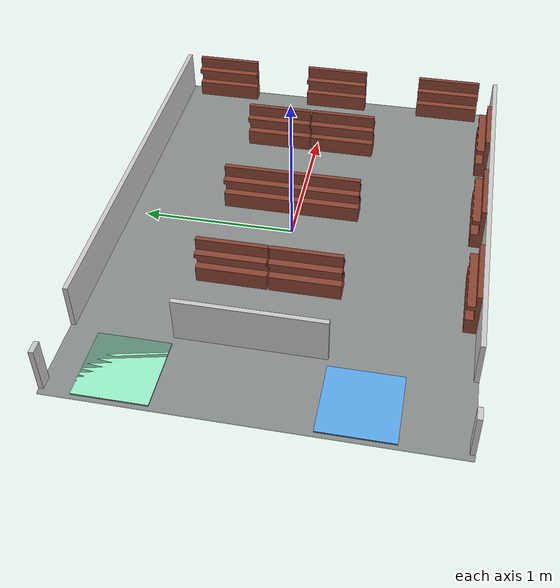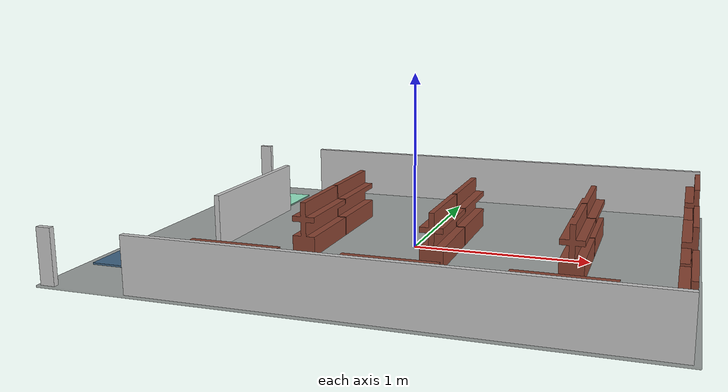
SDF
<sdf version="1.8">
 <world name="pinky_SOLO">
  <physics name="1ms" type="ignored">
   <max_step_size>0.001</max_step_size>
   <real_time_factor>1.0</real_time_factor>
  </physics>
  <plugin filename="gz-sim-physics-system" name="gz::sim::systems::Physics"/>
  <plugin filename="gz-sim-sensors-system" name="gz::sim::systems::Sensors">
   <render_engine>ogre2</render_engine>
  </plugin>
  <plugin filename="gz-sim-user-commands-system" name="gz::sim::systems::UserCommands"/>
  <plugin filename="gz-sim-scene-broadcaster-system" name="gz::sim::systems::SceneBroadcaster"/>
  <plugin filename="gz-sim-imu-system" name="gz::sim::systems::Imu"/>
  <light type="directional" name="sun">
   <cast_shadows>false</cast_shadows>
   <pose>0 0 2 0 0 0</pose>
   <diffuse>1 1 1 1</diffuse>
   <specular>1 1 1 1</specular>
   <attenuation><range>1000</range><constant>1</constant><linear>0</linear><quadratic>0</quadratic></attenuation>
   <direction>0 0 -1</direction>
  </light>
  <model name="floor">
   <static>true</static>
   <link name="link">
    <collision name="collision">
     <geometry><box><size>3.15 2.39 0.01</size></box></geometry>
     <pose>0 -0.07 0.01 0 0 0</pose>
    </collision>
    <visual name="visual">
     <geometry><box><size>3.15 2.39 0.01</size></box></geometry>
     <material>
      <ambient>0.2 0.2 0.2 0.5</ambient>
      <diffuse>0.2 0.2 0.2 0.5</diffuse>
      <specular>0.1 0.1 0.1 1</specular>
     </material>
     <pose>0 -0.07 0.01 0 0 0</pose>
    </visual>
    <inertial>
     <mass>1</mass>
     <inertia><ixx>1</ixx><ixy>0</ixy><ixz>0</ixz><iyy>1</iyy><iyz>0</iyz><izz>1</izz></inertia>
    </inertial>
   </link>
  </model>
  <model name="package_area">
   <static>true</static>
   <link name="link">
    <collision name="collision">
     <geometry><box><size>0.45 0.45 0.01</size></box></geometry>
     <pose>0 0 0.01 0 0 0</pose>
    </collision>
    <visual name="visual">
     <geometry><box><size>0.45 0.45 0.01</size></box></geometry>
     <material>
      <ambient>0.36 0.67 0.93 1</ambient>
      <diffuse>0.36 0.67 0.93 1</diffuse>
      <specular>0.1 0.1 0.1 1</specular>
      <emissive>0 0 0 0</emissive>
     </material>
     <pose>0 0 0.01 0 0 0</pose>
    </visual>
    <pose>-1.32 -0.64 0 0 0 0</pose>
    <inertial>
     <mass>1</mass>
     <inertia><ixx>1</ixx><ixy>0</ixy><ixz>0</ixz><iyy>1</iyy><iyz>0</iyz><izz>1</izz></inertia>
    </inertial>
   </link>
  </model>
  <model name="charge_area">
   <static>true</static>
   <link name="link">
    <collision name="collision">
     <geometry><box><size>0.45 0.45 0.01</size></box></geometry>
     <pose>0 0 0.01 0 0 0</pose>
    </collision>
    <visual name="visual">
     <geometry><box><size>0.45 0.45 0.01</size></box></geometry>
     <material>
      <ambient>0.6 0.95 0.8 1</ambient>
      <diffuse>0.6 0.95 0.8 1</diffuse>
      <specular>0.1 0.1 0.1 1</specular>
      <emissive>0 0 0 0</emissive>
     </material>
     <pose>0 0 0.01 0 0 0</pose>
    </visual>
    <pose>-1.32 0.72 0 0 0 0</pose>
    <inertial>
     <mass>1</mass>
     <inertia><ixx>1</ixx><ixy>0</ixy><ixz>0</ixz><iyy>1</iyy><iyz>0</iyz><izz>1</izz></inertia>
    </inertial>
   </link>
  </model>
  <include><uri>../models/SOLO/wall_80_1.sdf</uri><pose>-1.465 1.095 0 0 0 0</pose></include>
  <include><uri>../models/SOLO/wall_80_2.sdf</uri><pose>-1.465 -1.265 0 0 0 0</pose></include>
  <include><uri>../models/SOLO/wall_910.sdf</uri><pose>-1.055 -0.415 0 0 0 0</pose></include>
  <include><uri>../models/SOLO/wall_2610_1.sdf</uri><pose>1.545 1.095 0 0 0 0</pose></include>
  <include><uri>../models/SOLO/wall_2610_2.sdf</uri><pose>1.545 -1.265 0 0 0 0</pose></include>
  <include><uri>../models/SOLO/shelf_half_W_1.sdf</uri><pose>1.465 0.565 0 0 0 0</pose></include>
  <include><uri>../models/SOLO/shelf_half_W_2.sdf</uri><pose>1.465 -0.285 0 0 0 0</pose></include>
  <include><uri>../models/SOLO/shelf_half_W_3.sdf</uri><pose>1.465 -1.135 0 0 0 0</pose></include>
  <include><uri>../models/SOLO/shelf_half_L_1.sdf</uri><pose>0.795 -1.155 0 0 0 0</pose></include>
  <include><uri>../models/SOLO/shelf_half_L_2.sdf</uri><pose>0.045 -1.155 0 0 0 0</pose></include>
  <include><uri>../models/SOLO/shelf_half_L_3.sdf</uri><pose>-0.705 -1.155 0 0 0 0</pose></include>
  <include><uri>../models/SOLO/shelf_1.sdf</uri><pose>0.885 0.045 0 0 0 0</pose></include>
  <include><uri>../models/SOLO/shelf_2.sdf</uri><pose>0.885 -0.415 0 0 0 0</pose></include>
  <include><uri>../models/SOLO/shelf_3.sdf</uri><pose>0.155 0.045 0 0 0 0</pose></include>
  <include><uri>../models/SOLO/shelf_4.sdf</uri><pose>0.155 -0.415 0 0 0 0</pose></include>
  <include><uri>../models/SOLO/shelf_5.sdf</uri><pose>-0.575 0.045 0 0 0 0</pose></include>
  <include><uri>../models/SOLO/shelf_6.sdf</uri><pose>-0.575 -0.415 0 0 0 0</pose></include>
 </world>
</sdf>

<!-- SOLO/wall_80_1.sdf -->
<sdf version="1.10">
  <model name="wall_80_1">
    <static>true</static>
    <link name="link">
      <visual name="visual">
        <geometry>
          <mesh>
            <uri>./wall_80.dae</uri>
          </mesh>
        </geometry>
        <material>
          <ambient>0.8 0.8 0.8 1</ambient>
          <diffuse>0.8 0.8 0.8 1</diffuse>
          <specular>0.1 0.1 0.1 1</specular>
        </material>
      </visual>
      <collision name="collision">
        <geometry>
          <mesh>
            <uri>./wall_80.dae</uri>
          </mesh>
        </geometry>
      </collision>
    </link>
    <pose>0 0 0 0 0 0</pose>
  </model>
</sdf>

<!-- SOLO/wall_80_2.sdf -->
<sdf version="1.10">
  <model name="wall_80_2">
    <static>true</static>
    <link name="link">
      <visual name="visual">
        <geometry>
          <mesh>
            <uri>./wall_80.dae</uri>
          </mesh>
        </geometry>
        <material>
          <ambient>0.8 0.8 0.8 1</ambient>
          <diffuse>0.8 0.8 0.8 1</diffuse>
          <specular>0.1 0.1 0.1 1</specular>
        </material>
      </visual>
      <collision name="collision">
        <geometry>
          <mesh>
            <uri>./wall_80.dae</uri>
          </mesh>
        </geometry>
      </collision>
    </link>
    <pose>0 0 0 0 0 0</pose>
  </model>
</sdf>

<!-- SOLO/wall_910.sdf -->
<sdf version="1.10">
  <model name="wall_910">
    <static>true</static>
    <link name="link">
      <visual name="visual">
        <geometry>
          <mesh>
            <uri>./wall_910.dae</uri>
          </mesh>
        </geometry>
        <material>
          <ambient>0.8 0.8 0.8 1</ambient>
          <diffuse>0.8 0.8 0.8 1</diffuse>
          <specular>0.1 0.1 0.1 1</specular>
        </material>
      </visual>
      <collision name="collision">
        <geometry>
          <mesh>
            <uri>./wall_910.dae</uri>
          </mesh>
        </geometry>
      </collision>
    </link>
    <pose>0 0 0 0 0 0</pose>
  </model>
</sdf>

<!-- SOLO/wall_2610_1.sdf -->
<sdf version="1.10">
  <model name="wall_2610_1">
    <static>true</static>
    <link name="link">
      <visual name="visual">
        <geometry>
          <mesh>
            <uri>./wall_2610.dae</uri>
          </mesh>
        </geometry>
        <material>
          <ambient>0.8 0.8 0.8 1</ambient>
          <diffuse>0.8 0.8 0.8 1</diffuse>
          <specular>0.1 0.1 0.1 1</specular>
        </material>
      </visual>
      <collision name="collision">
        <geometry>
          <mesh>
            <uri>./wall_2610.dae</uri>
          </mesh>
        </geometry>
      </collision>
    </link>
    <pose>0 0 0 0 0 0</pose>
  </model>
</sdf>

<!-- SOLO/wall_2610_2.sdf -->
<sdf version="1.10">
  <model name="wall_2610_2">
    <static>true</static>
    <link name="link">
      <visual name="visual">
        <geometry>
          <mesh>
            <uri>./wall_2610.dae</uri>
          </mesh>
        </geometry>
        <material>
          <ambient>0.8 0.8 0.8 1</ambient>
          <diffuse>0.8 0.8 0.8 1</diffuse>
          <specular>0.1 0.1 0.1 1</specular>
        </material>
      </visual>
      <collision name="collision">
        <geometry>
          <mesh>
            <uri>./wall_2610.dae</uri>
          </mesh>
        </geometry>
      </collision>
    </link>
    <pose>0 0 0 0 0 0</pose>
  </model>
</sdf>

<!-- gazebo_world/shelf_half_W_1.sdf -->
<sdf version="1.10">
  <model name="shelf_half_W_1">
    <static>true</static>
    <link name="link">
      <visual name="visual">
        <geometry>
          <mesh>
            <uri>./models/shelf_half_W.dae</uri>
          </mesh>
        </geometry>
        <material>
          <ambient>0.55 0.27 0.20 1</ambient>
          <diffuse>0.55 0.27 0.20 1</diffuse>
          <specular>0.1 0.1 0.1 1</specular>
          <emissive>0 0 0 1</emissive>
        </material>
      </visual>
      <collision name="collision">
        <geometry>
          <mesh>
            <uri>./models/shelf_half_W.dae</uri>
          </mesh>
        </geometry>
      </collision>
    </link>
    <pose>0 0 0 0 0 0</pose>
  </model>
</sdf>

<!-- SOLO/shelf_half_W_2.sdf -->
<sdf version="1.10">
  <model name="shelf_half_W_2">
    <static>true</static>
    <link name="link">
      <visual name="visual">
        <geometry>
          <mesh>
            <uri>./shelf_half_W.dae</uri>
          </mesh>
        </geometry>
        <material>
          <ambient>0.55 0.27 0.20 1</ambient>
          <diffuse>0.55 0.27 0.20 1</diffuse>
          <specular>0.1 0.1 0.1 1</specular>
          <emissive>0 0 0 1</emissive>
        </material>
      </visual>
      <collision name="collision">
        <geometry>
          <mesh>
            <uri>./shelf_half_W.dae</uri>
          </mesh>
        </geometry>
      </collision>
    </link>
    <pose>0 0 0 0 0 0</pose>
  </model>
</sdf>

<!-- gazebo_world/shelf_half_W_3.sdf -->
<sdf version="1.10">
  <model name="shelf_half_W_3">
    <static>true</static>
    <link name="link">
      <visual name="visual">
        <geometry>
          <mesh>
            <uri>./models/shelf_half_W.dae</uri>
          </mesh>
        </geometry>
        <material>
          <ambient>0.55 0.27 0.20 1</ambient>
          <diffuse>0.55 0.27 0.20 1</diffuse>
          <specular>0.1 0.1 0.1 1</specular>
          <emissive>0 0 0 1</emissive>
        </material>
      </visual>
      <collision name="collision">
        <geometry>
          <mesh>
            <uri>./models/shelf_half_W.dae</uri>
          </mesh>
        </geometry>
      </collision>
    </link>
    <pose>0 0 0 0 0 0</pose>
  </model>
</sdf>

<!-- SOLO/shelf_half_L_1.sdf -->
<sdf version="1.10">
  <model name="shelf_half_L_1">
    <static>true</static>
    <link name="link">
      <visual name="visual">
        <geometry>
          <mesh>
            <uri>./shelf_half_L.dae</uri>
          </mesh>
        </geometry>
        <material>
          <ambient>0.55 0.27 0.20 1</ambient>
          <diffuse>0.55 0.27 0.20 1</diffuse>
          <specular>0.1 0.1 0.1 1</specular>
          <emissive>0 0 0 1</emissive>
        </material>
      </visual>
      <collision name="collision">
        <geometry>
          <mesh>
            <uri>./shelf_half_L.dae</uri>
          </mesh>
        </geometry>
      </collision>
    </link>
    <pose>0 0 0 0 0 0</pose>
  </model>
</sdf>

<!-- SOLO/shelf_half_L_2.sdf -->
<sdf version="1.10">
  <model name="shelf_half_L_2">
    <static>true</static>
    <link name="link">
      <visual name="visual">
        <geometry>
          <mesh>
            <uri>./shelf_half_L.dae</uri>
          </mesh>
        </geometry>
        <material>
          <ambient>0.55 0.27 0.20 1</ambient>
          <diffuse>0.55 0.27 0.20 1</diffuse>
          <specular>0.1 0.1 0.1 1</specular>
          <emissive>0 0 0 1</emissive>
        </material>
      </visual>
      <collision name="collision">
        <geometry>
          <mesh>
            <uri>./shelf_half_L.dae</uri>
          </mesh>
        </geometry>
      </collision>
    </link>
    <pose>0 0 0 0 0 0</pose>
  </model>
</sdf>

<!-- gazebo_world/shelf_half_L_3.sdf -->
<sdf version="1.10">
  <model name="shelf_half_L_3">
    <static>true</static>
    <link name="link">
      <visual name="visual">
        <geometry>
          <mesh>
            <uri>./models/shelf_half_L.dae</uri>
          </mesh>
        </geometry>
        <material>
          <ambient>0.55 0.27 0.20 1</ambient>
          <diffuse>0.55 0.27 0.20 1</diffuse>
          <specular>0.1 0.1 0.1 1</specular>
          <emissive>0 0 0 1</emissive>
        </material>
      </visual>
      <collision name="collision">
        <geometry>
          <mesh>
            <uri>./models/shelf_half_L.dae</uri>
          </mesh>
        </geometry>
      </collision>
    </link>
    <pose>0 0 0 0 0 0</pose>
  </model>
</sdf>

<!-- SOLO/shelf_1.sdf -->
<sdf version="1.10">
  <model name="shelf_1">
    <static>true</static>
    <link name="link">
      <visual name="visual">
        <geometry>
          <mesh>
            <uri>./shelf.dae</uri>
          </mesh>
        </geometry>
        <material>
          <ambient>0.55 0.27 0.20 1</ambient>
          <diffuse>0.55 0.27 0.20 1</diffuse>
          <specular>0.1 0.1 0.1 1</specular>
          <emissive>0 0 0 1</emissive>
        </material>
      </visual>
      <collision name="collision">
        <geometry>
          <mesh>
            <uri>./shelf.dae</uri>
          </mesh>
        </geometry>
      </collision>
    </link>
    <pose>0 0 0 0 0 0</pose>
  </model>
</sdf>

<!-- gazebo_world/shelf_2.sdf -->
<sdf version="1.10">
  <model name="shelf_2">
    <static>true</static>
    <link name="link">
      <visual name="visual">
        <geometry>
          <mesh>
            <uri>./models/shelf.dae</uri>
          </mesh>
        </geometry>
        <material>
          <ambient>0.55 0.27 0.20 1</ambient>
          <diffuse>0.55 0.27 0.20 1</diffuse>
          <specular>0.1 0.1 0.1 1</specular>
          <emissive>0 0 0 1</emissive>
        </material>
      </visual>
      <collision name="collision">
        <geometry>
          <mesh>
            <uri>./models/shelf.dae</uri>
          </mesh>
        </geometry>
      </collision>
    </link>
    <pose>0 0 0 0 0 0</pose>
  </model>
</sdf>

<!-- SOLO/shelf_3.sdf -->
<sdf version="1.10">
  <model name="shelf_3">
    <static>true</static>
    <link name="link">
      <visual name="visual">
        <geometry>
          <mesh>
            <uri>./shelf.dae</uri>
          </mesh>
        </geometry>
        <material>
          <ambient>0.55 0.27 0.20 1</ambient>
          <diffuse>0.55 0.27 0.20 1</diffuse>
          <specular>0.1 0.1 0.1 1</specular>
          <emissive>0 0 0 1</emissive>
        </material>
      </visual>
      <collision name="collision">
        <geometry>
          <mesh>
            <uri>./shelf.dae</uri>
          </mesh>
        </geometry>
      </collision>
    </link>
    <pose>0 0 0 0 0 0</pose>
  </model>
</sdf>

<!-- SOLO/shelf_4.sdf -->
<sdf version="1.10">
  <model name="shelf_4">
    <static>true</static>
    <link name="link">
      <visual name="visual">
        <geometry>
          <mesh>
            <uri>./shelf.dae</uri>
          </mesh>
        </geometry>
        <material>
          <ambient>0.55 0.27 0.20 1</ambient>
          <diffuse>0.55 0.27 0.20 1</diffuse>
          <specular>0.1 0.1 0.1 1</specular>
          <emissive>0 0 0 1</emissive>
        </material>
      </visual>
      <collision name="collision">
        <geometry>
          <mesh>
            <uri>./shelf.dae</uri>
          </mesh>
        </geometry>
      </collision>
    </link>
    <pose>0 0 0 0 0 0</pose>
  </model>
</sdf>

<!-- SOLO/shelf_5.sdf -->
<sdf version="1.10">
  <model name="shelf_5">
    <static>true</static>
    <link name="link">
      <visual name="visual">
        <geometry>
          <mesh>
            <uri>./shelf.dae</uri>
          </mesh>
        </geometry>
        <material>
          <ambient>0.55 0.27 0.20 1</ambient>
          <diffuse>0.55 0.27 0.20 1</diffuse>
          <specular>0.1 0.1 0.1 1</specular>
          <emissive>0 0 0 1</emissive>
        </material>
      </visual>
      <collision name="collision">
        <geometry>
          <mesh>
            <uri>./shelf.dae</uri>
          </mesh>
        </geometry>
      </collision>
    </link>
    <pose>0 0 0 0 0 0</pose>
  </model>
</sdf>

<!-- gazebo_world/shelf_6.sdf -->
<sdf version="1.10">
  <model name="shelf_6">
    <static>true</static>
    <link name="link">
      <visual name="visual">
        <geometry>
          <mesh>
            <uri>./models/shelf.dae</uri>
          </mesh>
        </geometry>
        <material>
          <ambient>0.55 0.27 0.20 1</ambient>
          <diffuse>0.55 0.27 0.20 1</diffuse>
          <specular>0.1 0.1 0.1 1</specular>
          <emissive>0 0 0 1</emissive>
        </material>
      </visual>
      <collision name="collision">
        <geometry>
          <mesh>
            <uri>./models/shelf.dae</uri>
          </mesh>
        </geometry>
      </collision>
    </link>
    <pose>0 0 0 0 0 0</pose>
  </model>
</sdf>
